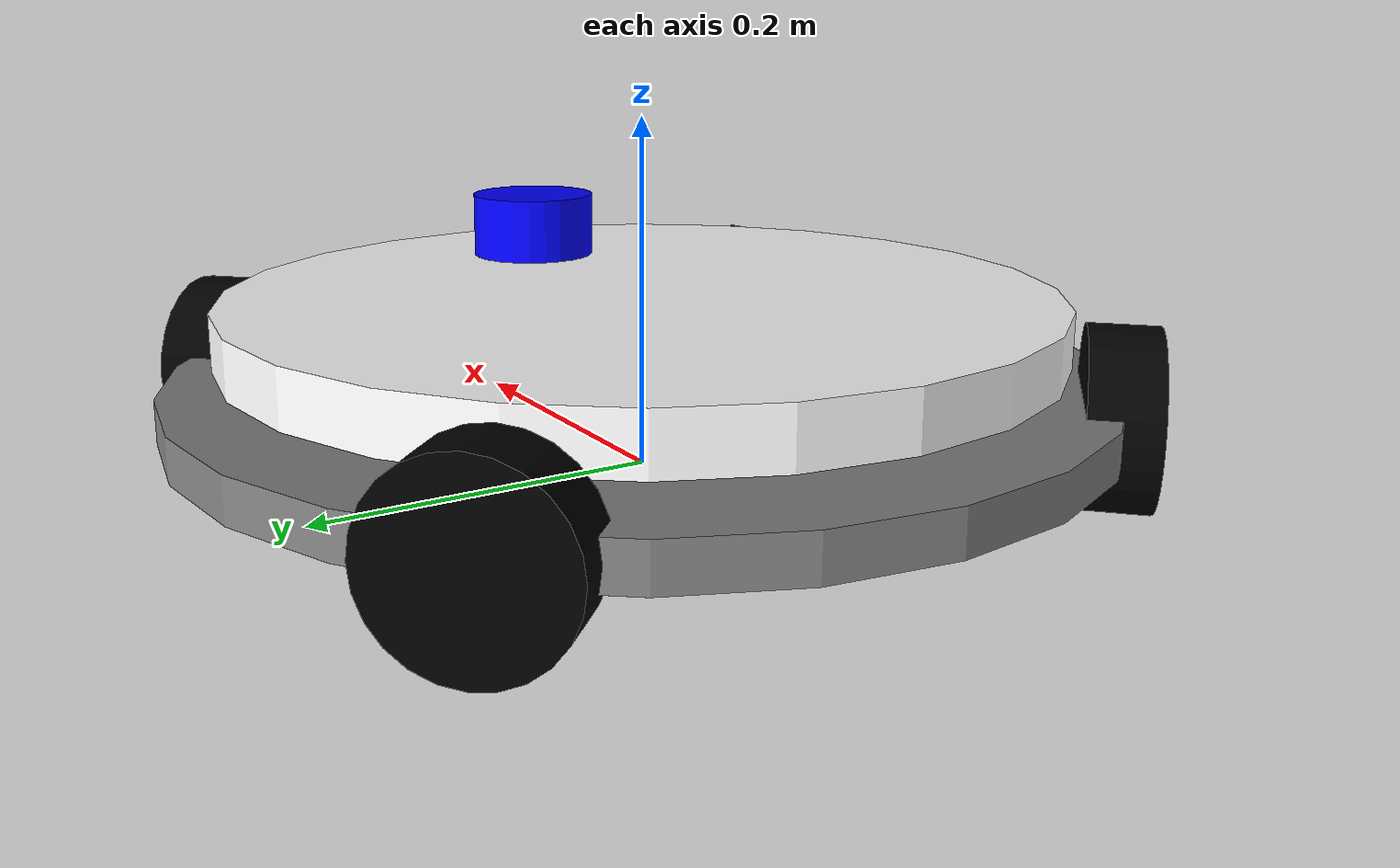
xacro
<?xml version="1.0"?>
<robot name="omni_robot" xmlns:xacro="http://ros.org/wiki/xacro">
  <material name="gray">
    <color rgba="0.5 0.5 0.5 1"/>
  </material>

  <material name="black">
    <color rgba="0 0 0 1"/>
  </material>

  <material name="white">
    <color rgba="1 1 1 1"/>
  </material>

  <material name="blue">
    <color rgba="0 0 1 1"/>
  </material>

  <!-- Base Footprint (ROOT) -->
  <link name="base_footprint">
    <visual>
      <geometry>
        <box size="0.001 0.001 0.001"/>
      </geometry>
      <material name="black"/>
    </visual>
    <inertial>
      <mass value="0.001"/>
      <origin xyz="0 0 0"/>
      <inertia ixx="0.0001" ixy="0" ixz="0" iyy="0.0001" iyz="0" izz="0.0001"/>
    </inertial>
  </link>

  <!-- Base Link -->
  <link name="base_link">
    <visual>
      <geometry>
        <cylinder radius="0.2655" length="0.02441"/>
      </geometry>
      <material name="gray"/>
    </visual>
    <collision>
      <geometry>
        <cylinder radius="0.15" length="0.02441"/>
      </geometry>
    </collision>
    <inertial>
      <mass value="2.0"/>
      <origin xyz="0 0 0"/>
      <inertia ixx="0.035" ixy="0" ixz="0" iyy="0.035" iyz="0" izz="0.07"/>
    </inertial>
  </link>

  <joint name="base_footprint_joint" type="fixed">
    <parent link="base_footprint"/>
    <child link="base_link"/>
    <origin xyz="0 0 0.04667" rpy="0 0 0"/>
  </joint>

  <!-- Base Up Link -->
  <link name="baseup_link">
    <visual>
      <geometry>
        <cylinder radius="0.2355" length="0.03136"/>
      </geometry>
      <material name="white"/>
    </visual>
    <collision>
      <geometry>
        <cylinder radius="0.2355" length="0.03136"/>
      </geometry>
    </collision>
    <inertial>
      <mass value="1.0"/>
      <origin xyz="0 0 0"/>
      <inertia ixx="0.014" ixy="0" ixz="0" iyy="0.014" iyz="0" izz="0.027"/>
    </inertial>
  </link>

  <joint name="baseup_joint" type="fixed">
    <parent link="base_link"/>
    <child link="baseup_link"/>
    <origin xyz="0 0 0.04068" rpy="0 0 0"/>
  </joint>

  <!-- Wheel Macro -->
  <xacro:macro name="omni_wheel" params="wheel_name x y z roll pitch yaw">
    <link name="${wheel_name}">
      <visual>
        <geometry>
          <cylinder radius="0.05" length="0.03804"/>
        </geometry>
        <!-- Rotate cylinder so axis (Z) aligns with Y -->
        <origin xyz="0 0 0" rpy="1.5708 0 0"/>
        <material name="black"/>
      </visual>
      <collision>
        <geometry>
          <cylinder radius="0.05" length="0.03804"/>
        </geometry>
        <!-- Collision follows Physics (Parallel) for smooth rolling -->
        <origin xyz="0 0 0" rpy="1.5708 0 0"/>
      </collision>
      <inertial>
        <mass value="0.5"/>
        <origin xyz="0 0 0"/>
        <inertia ixx="0.0004" ixy="0" ixz="0" iyy="0.0004" iyz="0" izz="0.0006"/>
      </inertial>
    </link>

    <joint name="joint_${wheel_name}" type="continuous">
      <parent link="base_link"/>
      <child link="${wheel_name}"/>
      <origin xyz="${x} ${y} ${z}" rpy="${roll} ${pitch} ${yaw}"/>
      <axis xyz="0 1 0"/>
    </joint>
  </xacro:macro>

  <xacro:omni_wheel wheel_name="Rear_Left" x="-0.1842" y="0.1842" z="0" roll="0" pitch="0" yaw="+0.785398"/>
  <xacro:omni_wheel wheel_name="Front_Right" x="0.1842" y="-0.1842" z="0" roll="0" pitch="0" yaw="+0.785398"/>
  <xacro:omni_wheel wheel_name="Front_Left" x="0.1842" y="0.1842" z="0" roll="0" pitch="0" yaw="-0.785398"/>
  <xacro:omni_wheel wheel_name="Rear_Right" x="-0.1842" y="-0.1842" z="0" roll="0" pitch="0" yaw="-0.785398"/>

  <!-- Lidar Link -->
  <link name="lidar_link">
    <visual>
      <geometry>
        <cylinder radius="0.03785" length="0.0413"/>
      </geometry>
      <material name="blue"/>
    </visual>
    <collision>
      <geometry>
        <cylinder radius="0.03785" length="0.0413"/>
      </geometry>
    </collision>
    <inertial>
      <mass value="0.2"/>
      <origin xyz="0 0 0"/>
      <inertia ixx="0.0001" ixy="0" ixz="0" iyy="0.0001" iyz="0" izz="0.0001"/>
    </inertial>
  </link>

  <joint name="lidar_joint" type="fixed">
    <parent link="baseup_link"/>
    <child link="lidar_link"/>
    <origin xyz="0.137 0 0.0335" rpy="0 0 0"/>
  </joint>

  <!-- Gazebo Plugins and Sensors -->
  <gazebo>
    <!-- Drive Control Only (Odom is inaccurate for X-Drive) -->
    <plugin
      filename="ignition-gazebo-mecanum-drive-system"
      name="ignition::gazebo::systems::MecanumDrive">
      <front_left_joint>joint_Front_Left</front_left_joint>
      <front_right_joint>joint_Front_Right</front_right_joint>
      <back_left_joint>joint_Rear_Left</back_left_joint>
      <back_right_joint>joint_Rear_Right</back_right_joint>
      <wheel_separation>0.3684</wheel_separation>
      <wheelbase>0.3684</wheelbase>
      <wheel_radius>0.05</wheel_radius>
      <min_acceleration>-10</min_acceleration>
      <max_acceleration>10</max_acceleration>
      <topic>cmd_vel</topic>
      <!-- Disable Plugin Odom by diverting to trash topics -->
      <odom_topic>odom_trash</odom_topic>
      <tf_topic>tf_trash</tf_topic>
      <frame_id>odom</frame_id>
      <child_frame_id>base_footprint</child_frame_id>
    </plugin>

    <!-- Ground Truth Odometry (Perfect Localization) -->
    <plugin
      filename="ignition-gazebo-odometry-publisher-system"
      name="ignition::gazebo::systems::OdometryPublisher">
      <odom_frame>odom</odom_frame>
      <robot_base_frame>base_footprint</robot_base_frame>
      <odom_topic>odometry</odom_topic>
      <tf_topic>tf</tf_topic>
      <dimensions>2</dimensions> <!-- 2D Odom -->
      <odom_publish_frequency>50</odom_publish_frequency>
    </plugin>

    <plugin
      filename="ignition-gazebo-joint-state-publisher-system"
      name="ignition::gazebo::systems::JointStatePublisher">
      <topic>/joint_states</topic>
    </plugin>
  </gazebo>

  <gazebo reference="lidar_link">
    <sensor name="lidar" type="gpu_lidar">
      <pose>0 0 0 0 0 0</pose>
      <always_on>true</always_on>
      <visualize>true</visualize>
      <topic>/scan</topic>
      <update_rate>10</update_rate>
      <gz_frame_id>lidar_link</gz_frame_id>
      <ray>
        <scan>
          <horizontal>
            <samples>360</samples>
            <resolution>1</resolution>
            <min_angle>-3.14159</min_angle>
            <max_angle>3.14159</max_angle>
          </horizontal>
          <vertical>
            <samples>1</samples>
            <resolution>0.01</resolution>
            <min_angle>0</min_angle>
            <max_angle>0</max_angle>
          </vertical>
        </scan>
        <range>
          <min>0.15</min>
          <max>10.0</max>
          <resolution>0.01</resolution>
        </range>
      </ray>
    </sensor>
  </gazebo>

</robot>
